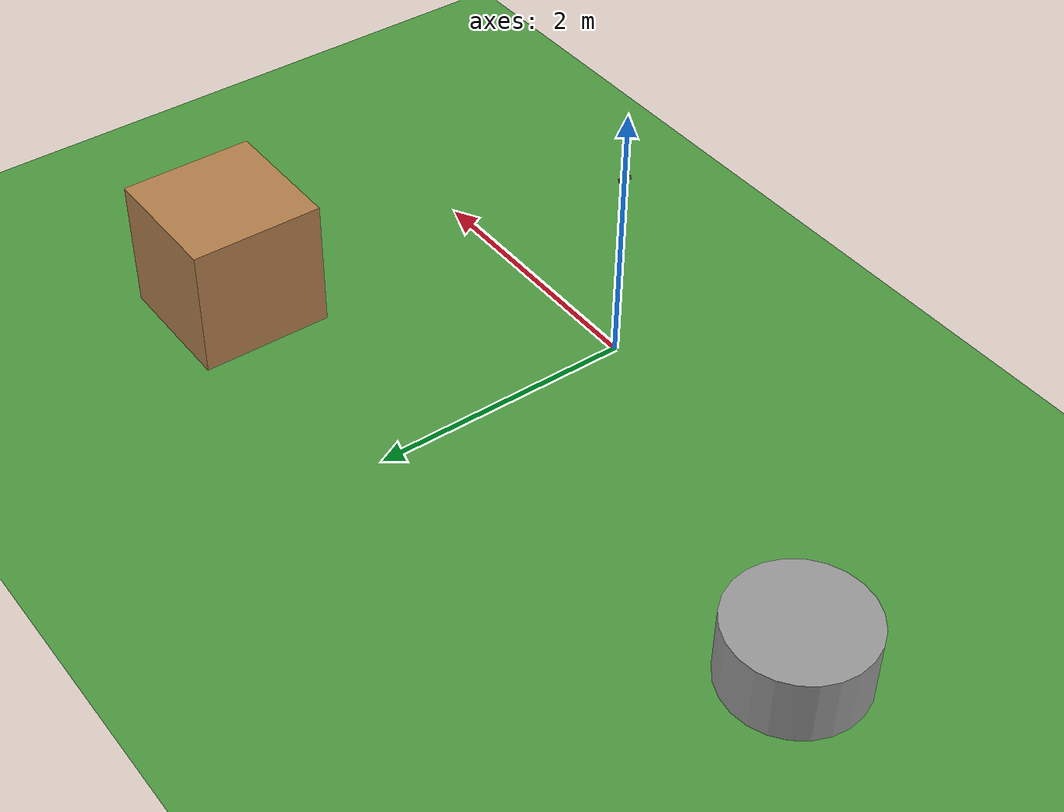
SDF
<?xml version="1.0"?>
<sdf version="1.6">
  <world name="lawn_test_world">

    <!-- Physics settings -->
    <physics name="default_physics" default="0" type="ode">
      <max_step_size>0.001</max_step_size>
      <real_time_factor>1.0</real_time_factor>
      <real_time_update_rate>1000</real_time_update_rate>
    </physics>

    <!-- Scene settings -->
    <scene>
      <ambient>0.4 0.4 0.4 1</ambient>
      <background>0.7 0.8 1 1</background>
      <shadows>true</shadows>
    </scene>

    <!-- Sun -->
    <include>
      <uri>model://sun</uri>
    </include>

    <!-- Ground plane with grass texture -->
    <model name="ground_plane">
      <static>true</static>
      <link name="link">
        <collision name="collision">
          <geometry>
            <plane>
              <normal>0 0 1</normal>
              <size>20 20</size>
            </plane>
          </geometry>
          <surface>
            <contact>
              <collide_bitmask>65535</collide_bitmask>
              <ode>
                <mu>0.1</mu>
                <mu2>0.1</mu2>
              </ode>
            </contact>
            <friction>
              <ode>
                <mu>0.1</mu>
                <mu2>0.1</mu2>
              </ode>
            </friction>
          </surface>
        </collision>

        <visual name="visual">
          <cast_shadows>false</cast_shadows>
          <geometry>
            <plane>
              <normal>0 0 1</normal>
              <size>20 20</size>
            </plane>
          </geometry>
          <material>
            <script>
              <uri>file://media/materials/scripts/gazebo.material</uri>
              <name>Gazebo/Grass</name>
            </script>
          </material>
        </visual>
      </link>
    </model>

    <!-- Test obstacles -->
    <model name="obstacle_1">
      <pose>2 2 0.5 0 0 0</pose>
      <static>true</static>
      <link name="link">
        <collision name="collision">
          <geometry>
            <box>
              <size>1 1 1</size>
            </box>
          </geometry>
        </collision>
        <visual name="visual">
          <geometry>
            <box>
              <size>1 1 1</size>
            </box>
          </geometry>
          <material>
            <script>
              <uri>file://media/materials/scripts/gazebo.material</uri>
              <name>Gazebo/Wood</name>
            </script>
          </material>
        </visual>
      </link>
    </model>

    <model name="obstacle_2">
      <pose>-3 1 0.25 0 0 0</pose>
      <static>true</static>
      <link name="link">
        <collision name="collision">
          <geometry>
            <cylinder>
              <radius>0.5</radius>
              <length>0.5</length>
            </cylinder>
          </geometry>
        </collision>
        <visual name="visual">
          <geometry>
            <cylinder>
              <radius>0.5</radius>
              <length>0.5</length>
            </cylinder>
          </geometry>
          <material>
            <script>
              <uri>file://media/materials/scripts/gazebo.material</uri>
              <name>Gazebo/Grey</name>
            </script>
          </material>
        </visual>
      </link>
    </model>

    <!-- D455 camera model -->
    <model name="d455_camera">
      <pose>0 0 1.5 0 0.3 0</pose>
      <static>true</static>

      <!-- Camera link -->
      <link name="camera_link">
        <visual name="visual">
          <geometry>
            <box>
              <size>0.025 0.090 0.025</size>
            </box>
          </geometry>
          <material>
            <script>
              <uri>file://media/materials/scripts/gazebo.material</uri>
              <name>Gazebo/DarkGrey</name>
            </script>
          </material>
        </visual>

        <!-- Color camera -->
        <sensor name="color_camera" type="camera">
          <always_on>true</always_on>
          <update_rate>30</update_rate>
          <camera name="color">
            <horizontal_fov>1.047</horizontal_fov>
            <image>
              <width>640</width>
              <height>480</height>
              <format>R8G8B8</format>
            </image>
            <clip>
              <near>0.1</near>
              <far>100</far>
            </clip>
            <noise>
              <type>gaussian</type>
              <mean>0.0</mean>
              <stddev>0.007</stddev>
            </noise>
          </camera>
          <plugin name="camera_controller" filename="libgazebo_ros_camera.so">
            <ros>
              <namespace>/camera</namespace>
              <remapping>image_raw:=color/image_raw</remapping>
              <remapping>camera_info:=color/camera_info</remapping>
            </ros>
            <camera_name>color</camera_name>
            <frame_name>camera_color_optical_frame</frame_name>
            <trigger_rate>30.0</trigger_rate>
          </plugin>
        </sensor>

        <!-- Depth camera -->
        <sensor name="depth_camera" type="depth">
          <always_on>true</always_on>
          <update_rate>30</update_rate>
          <camera name="depth">
            <horizontal_fov>1.047</horizontal_fov>
            <image>
              <width>640</width>
              <height>480</height>
              <format>R_FLOAT32</format>
            </image>
            <clip>
              <near>0.1</near>
              <far>10</far>
            </clip>
            <noise>
              <type>gaussian</type>
              <mean>0.0</mean>
              <stddev>0.01</stddev>
            </noise>
          </camera>
          <plugin name="depth_camera_controller" filename="libgazebo_ros_camera.so">
            <ros>
              <namespace>/camera</namespace>
              <remapping>image_raw:=depth/image_raw</remapping>
              <remapping>camera_info:=depth/camera_info</remapping>
            </ros>
            <camera_name>depth</camera_name>
            <frame_name>camera_depth_optical_frame</frame_name>
            <trigger_rate>30.0</trigger_rate>
          </plugin>
        </sensor>

      </link>
    </model>

    <!-- GUI settings -->
    <gui fullscreen='0'>
      <camera name='user_camera'>
        <pose>5 -5 3 0 0.5 2.35</pose>
        <view_controller>orbit</view_controller>
        <projection_type>perspective</projection_type>
      </camera>
    </gui>

  </world>
</sdf>
